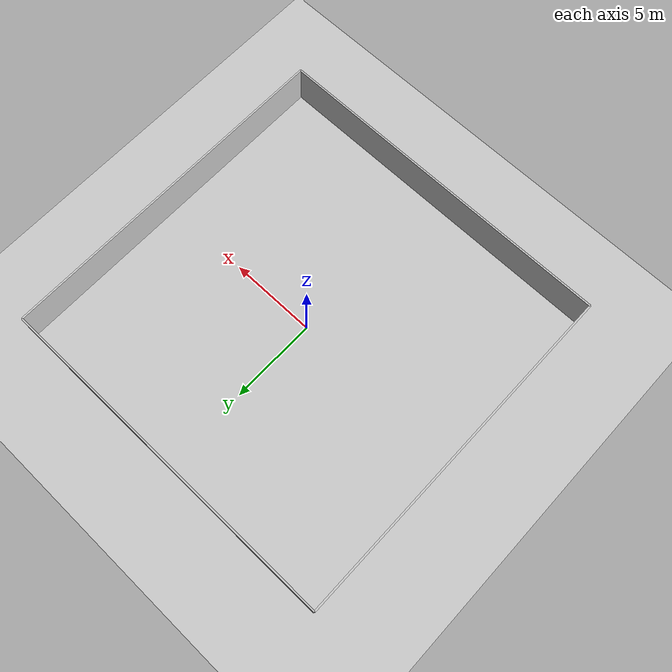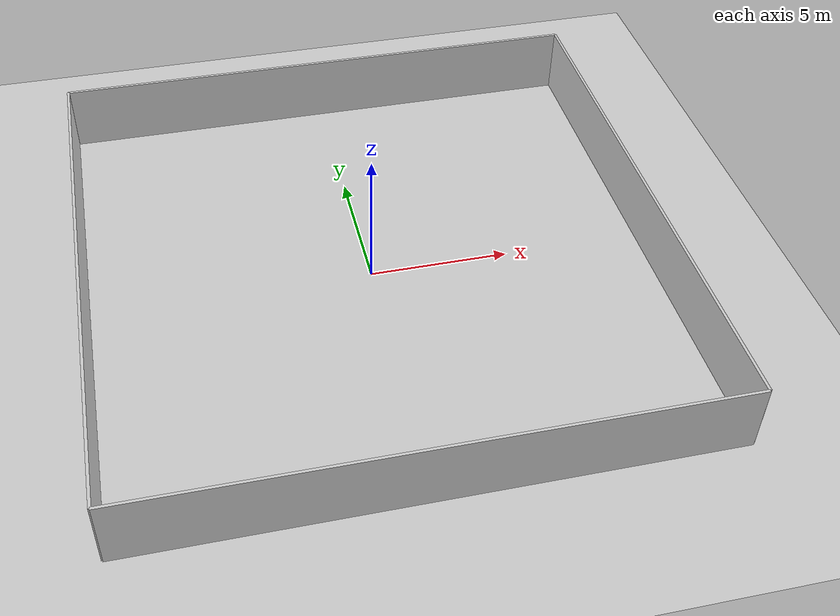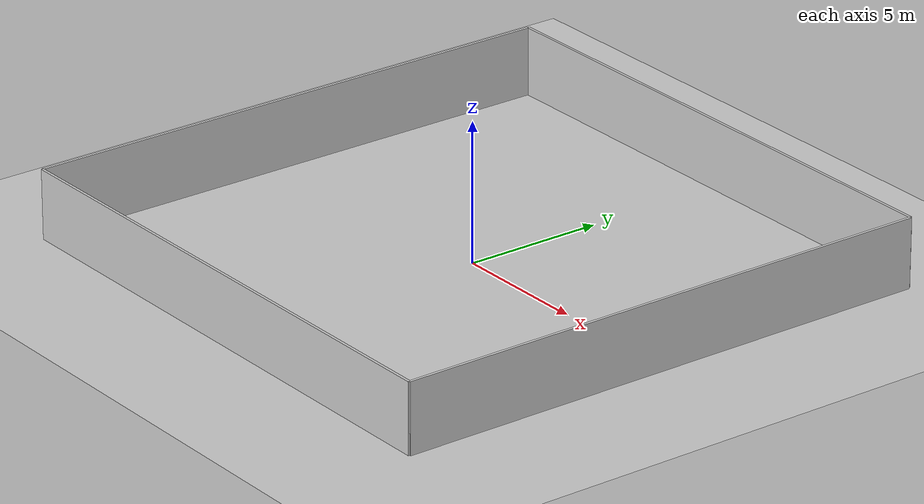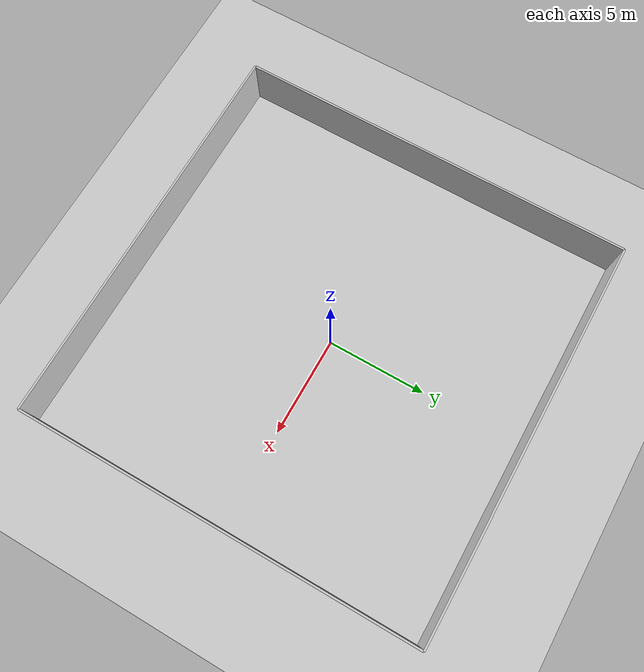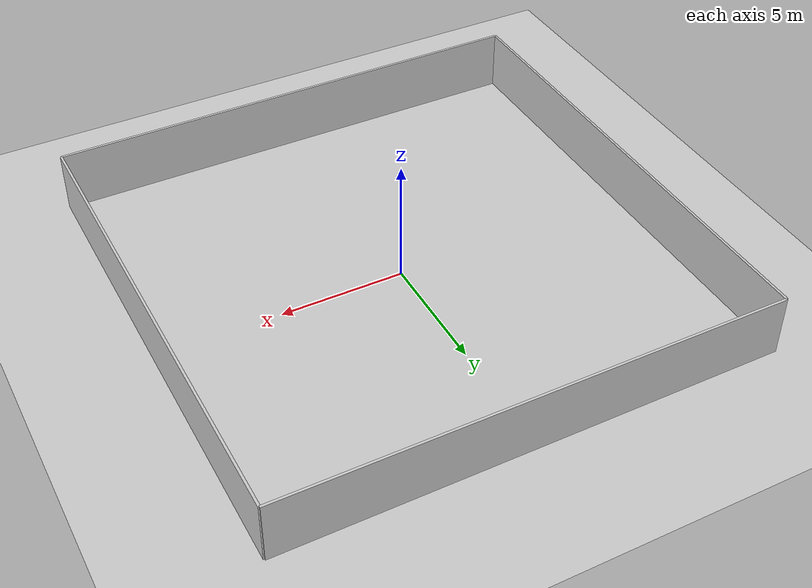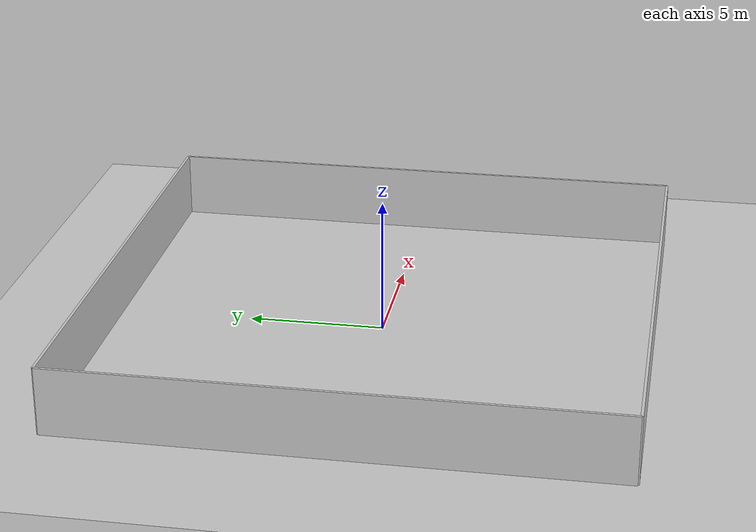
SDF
<sdf version="1.7">
 <world name="test_room">
  <light name="sun" type="directional">
   <pose>0 0 10 0 -0 0</pose>
   <diffuse>0.8 0.8 0.8 1</diffuse>
   <specular>0.2 0.2 0.2 1</specular>
   <attenuation>
    <range>1000</range>
    <constant>0.9</constant>
    <linear>0.01</linear>
    <quadratic>0.001</quadratic>
   </attenuation>
   <direction>-0.5 0.1 -0.9</direction>
   <spot><inner_angle>0</inner_angle><outer_angle>0</outer_angle><falloff>0</falloff></spot>
  </light>
  <model name="ground_plane">
   <static>1</static>
   <link name="link">
    <collision name="collision">
     <geometry><plane><normal>0 0 1</normal><size>100 100</size></plane></geometry>
     <surface>
      <contact><collide_bitmask>65535</collide_bitmask></contact>
      <friction><ode><mu>100</mu><mu2>50</mu2></ode></friction>
     </surface>
    </collision>
    <visual name="visual">
     <cast_shadows>0</cast_shadows>
     <geometry><plane><normal>0 0 1</normal><size>100 100</size></plane></geometry>
     <material>
      <script><uri>file://media/materials/scripts/gazebo.material</uri><name>Gazebo/Grey</name></script>
     </material>
    </visual>
   </link>
  </model>
  <model name="room">
   <static>1</static>
   <link name="wall_back">
    <visual name="back_visual">
     <geometry><box><size>20 0.1 2.5</size></box></geometry>
     <pose>0 -10 1.25 0 -0 0</pose>
     <material><ambient>0.8 0.8 0.8 1</ambient></material>
    </visual>
    <collision name="back_collision">
     <pose>0 -10 1.25 0 -0 0</pose>
     <geometry><box><size>20 0.1 2.5</size></box></geometry>
    </collision>
   </link>
   <link name="wall_front">
    <visual name="front_visual">
     <geometry><box><size>20 0.1 2.5</size></box></geometry>
     <pose>0 10 1.25 0 -0 0</pose>
     <material><ambient>0.8 0.8 0.8 1</ambient></material>
    </visual>
    <collision name="front_collision">
     <pose>0 10 1.25 0 -0 0</pose>
     <geometry><box><size>20 0.1 2.5</size></box></geometry>
    </collision>
   </link>
   <link name="wall_left">
    <visual name="left_visual">
     <geometry><box><size>0.1 20 2.5</size></box></geometry>
     <pose>-10 0 1.25 0 -0 0</pose>
     <material><ambient>0.8 0.8 0.8 1</ambient></material>
    </visual>
    <collision name="left_collision">
     <pose>-10 0 1.25 0 -0 0</pose>
     <geometry><box><size>0.1 20 2.5</size></box></geometry>
    </collision>
   </link>
   <link name="wall_right">
    <visual name="right_visual">
     <geometry><box><size>0.1 20 2.5</size></box></geometry>
     <pose>10 0 1.25 0 -0 0</pose>
     <material><ambient>0.8 0.8 0.8 1</ambient></material>
    </visual>
    <collision name="right_collision">
     <pose>10 0 1.25 0 -0 0</pose>
     <geometry><box><size>0.1 20 2.5</size></box></geometry>
    </collision>
   </link>
  </model>
  <gravity>0 0 -9.8</gravity>
  <magnetic_field>6e-06 2.3e-05 -4.2e-05</magnetic_field>
  <atmosphere type="adiabatic"/>
  <physics type="ode">
   <max_step_size>0.001</max_step_size>
   <real_time_factor>1</real_time_factor>
   <real_time_update_rate>1000</real_time_update_rate>
  </physics>
  <scene><ambient>0.4 0.4 0.4 1</ambient><background>0.7 0.7 0.7 1</background><shadows>1</shadows></scene>
  <audio><device>default</device></audio>
  <spherical_coordinates>
   <surface_model>EARTH_WGS84</surface_model>
   <latitude_deg>0</latitude_deg>
   <longitude_deg>0</longitude_deg>
   <elevation>0</elevation>
   <heading_deg>0</heading_deg>
  </spherical_coordinates>
 </world>
</sdf>
